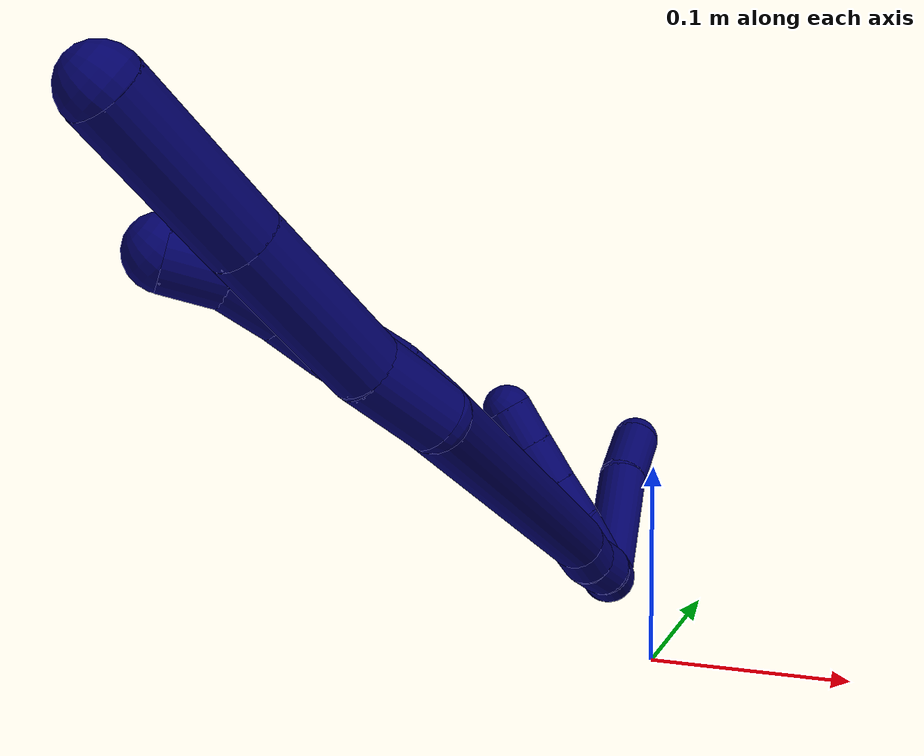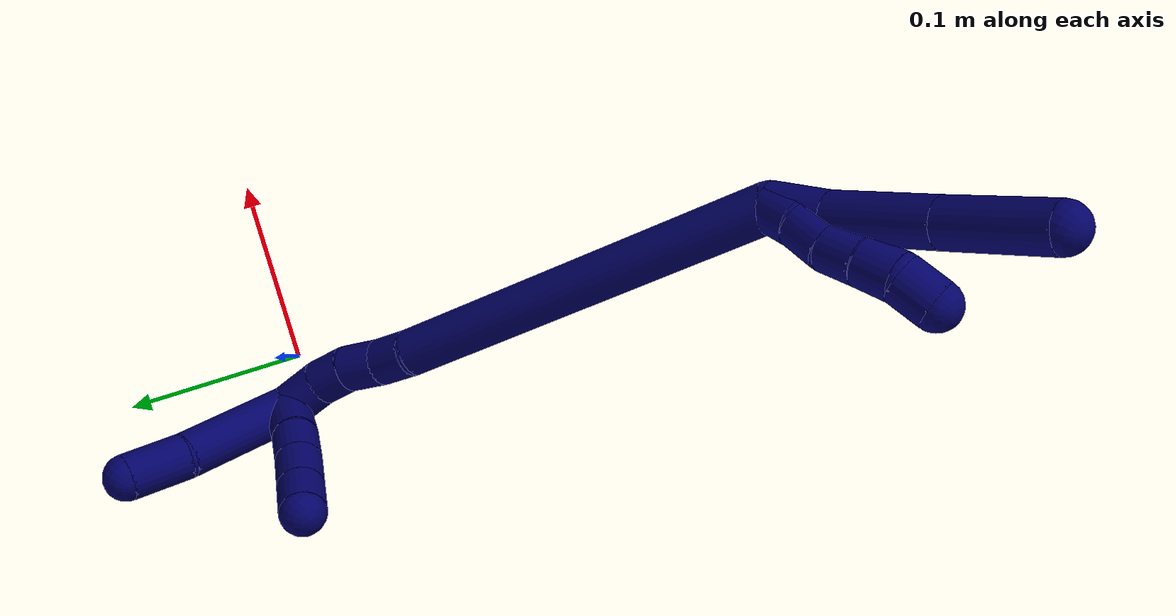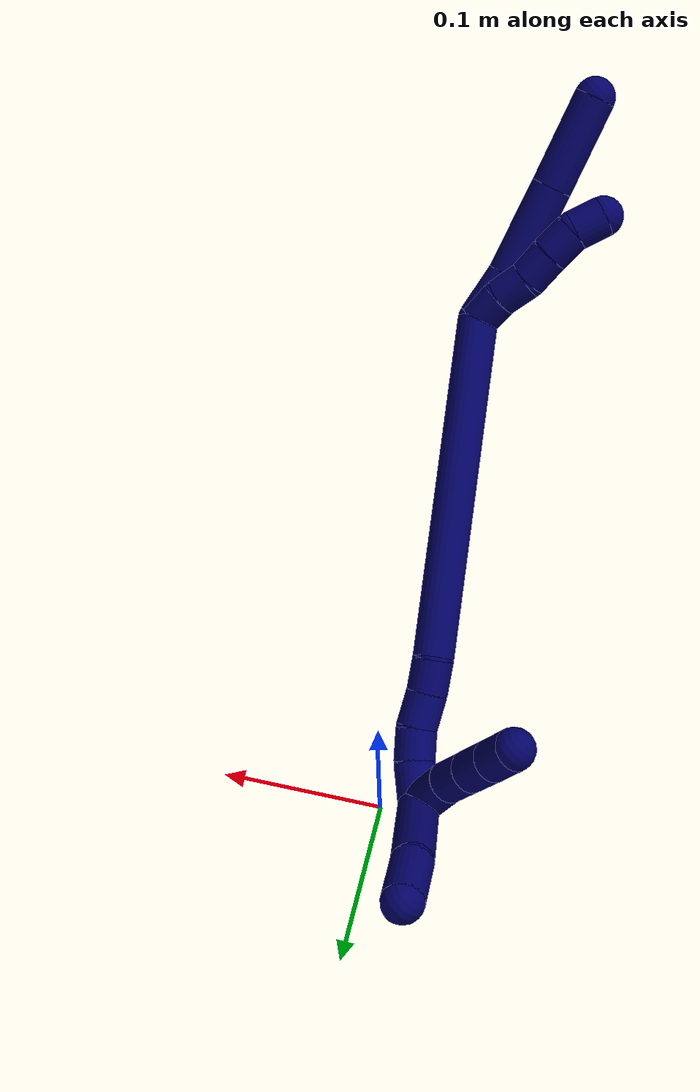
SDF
<sdf version="1.7">
 <world name="default">
  <model name="7">
   <static>0</static>
   <link name="7">
    <collision name="collision-cylinder-e_1_2_8">
     <pose>-0.000888 -0.004769 0.015474 0.298969 -0.054794 -0.008254</pose>
     <geometry><cylinder><radius>0.0125</radius><length>0.032434</length></cylinder></geometry>
     <surface>
      <friction><ode><mu>1.16</mu><mu2>1.16</mu2><slip1>0</slip1><slip2>0</slip2></ode></friction>
      <contact><ode><kp>1e+06</kp><kd>1</kd><max_vel>0</max_vel><min_depth>0.001</min_depth></ode></contact>
     </surface>
    </collision>
    <visual name="visual-cylinder-e_1_2_8">
     <pose>-0.000888 -0.004769 0.015474 0.298969 -0.054794 -0.008254</pose>
     <geometry><cylinder><radius>0.0125</radius><length>0.032434</length></cylinder></geometry>
     <material><ambient>0.003922 0 0.403922 1</ambient></material>
    </visual>
    <collision name="collision-cylinder-e_2_8_9">
     <pose>0.001354 -0.019013 0.058865 0.327188 0.105775 0.017476</pose>
     <geometry><cylinder><radius>0.0125</radius><length>0.059291</length></cylinder></geometry>
     <surface>
      <friction><ode><mu>1.16</mu><mu2>1.16</mu2><slip1>0</slip1><slip2>0</slip2></ode></friction>
      <contact><ode><kp>1e+06</kp><kd>1</kd><max_vel>0</max_vel><min_depth>0.001</min_depth></ode></contact>
     </surface>
    </collision>
    <visual name="visual-cylinder-e_2_8_9">
     <pose>0.001354 -0.019013 0.058865 0.327188 0.105775 0.017476</pose>
     <geometry><cylinder><radius>0.0125</radius><length>0.059291</length></cylinder></geometry>
     <material><ambient>0.003922 0 0.403922 1</ambient></material>
    </visual>
    <collision name="collision-cylinder-e_3_9_6">
     <pose>0.008006 -0.037901 0.11413 0.33151 0.121176 0.020296</pose>
     <geometry><cylinder><radius>0.0125</radius><length>0.058275</length></cylinder></geometry>
     <surface>
      <friction><ode><mu>1.16</mu><mu2>1.16</mu2><slip1>0</slip1><slip2>0</slip2></ode></friction>
      <contact><ode><kp>1e+06</kp><kd>1</kd><max_vel>0</max_vel><min_depth>0.001</min_depth></ode></contact>
     </surface>
    </collision>
    <visual name="visual-cylinder-e_3_9_6">
     <pose>0.008006 -0.037901 0.11413 0.33151 0.121176 0.020296</pose>
     <geometry><cylinder><radius>0.0125</radius><length>0.058275</length></cylinder></geometry>
     <material><ambient>0.003922 0 0.403922 1</ambient></material>
    </visual>
    <collision name="collision-cylinder-e_1_2_10">
     <pose>0.000149 0.000256 0.009996 -0.025616 0.014861 -0.00019</pose>
     <geometry><cylinder><radius>0.0125</radius><length>0.02</length></cylinder></geometry>
     <surface>
      <friction><ode><mu>1.16</mu><mu2>1.16</mu2><slip1>0</slip1><slip2>0</slip2></ode></friction>
      <contact><ode><kp>1e+06</kp><kd>1</kd><max_vel>0</max_vel><min_depth>0.001</min_depth></ode></contact>
     </surface>
    </collision>
    <visual name="visual-cylinder-e_1_2_10">
     <pose>0.000149 0.000256 0.009996 -0.025616 0.014861 -0.00019</pose>
     <geometry><cylinder><radius>0.0125</radius><length>0.02</length></cylinder></geometry>
     <material><ambient>0.003922 0 0.403922 1</ambient></material>
    </visual>
    <collision name="collision-cylinder-e_2_10_11">
     <pose>-0.001275 0.001821 0.02978 -0.132911 -0.157923 0.010532</pose>
     <geometry><cylinder><radius>0.0125</radius><length>0.02</length></cylinder></geometry>
     <surface>
      <friction><ode><mu>1.16</mu><mu2>1.16</mu2><slip1>0</slip1><slip2>0</slip2></ode></friction>
      <contact><ode><kp>1e+06</kp><kd>1</kd><max_vel>0</max_vel><min_depth>0.001</min_depth></ode></contact>
     </surface>
    </collision>
    <visual name="visual-cylinder-e_2_10_11">
     <pose>-0.001275 0.001821 0.02978 -0.132911 -0.157923 0.010532</pose>
     <geometry><cylinder><radius>0.0125</radius><length>0.02</length></cylinder></geometry>
     <material><ambient>0.003922 0 0.403922 1</ambient></material>
    </visual>
    <collision name="collision-cylinder-e_3_11_12">
     <pose>-0.00343 0.002176 0.049506 0.095716 -0.058198 -0.002788</pose>
     <geometry><cylinder><radius>0.0125</radius><length>0.02</length></cylinder></geometry>
     <surface>
      <friction><ode><mu>1.16</mu><mu2>1.16</mu2><slip1>0</slip1><slip2>0</slip2></ode></friction>
      <contact><ode><kp>1e+06</kp><kd>1</kd><max_vel>0</max_vel><min_depth>0.001</min_depth></ode></contact>
     </surface>
    </collision>
    <visual name="visual-cylinder-e_3_11_12">
     <pose>-0.00343 0.002176 0.049506 0.095716 -0.058198 -0.002788</pose>
     <geometry><cylinder><radius>0.0125</radius><length>0.02</length></cylinder></geometry>
     <material><ambient>0.003922 0 0.403922 1</ambient></material>
    </visual>
    <collision name="collision-cylinder-e_4_12_13">
     <pose>-0.005311 0.000332 0.069318 0.089812 -0.130366 -0.005866</pose>
     <geometry><cylinder><radius>0.0125</radius><length>0.02</length></cylinder></geometry>
     <surface>
      <friction><ode><mu>1.16</mu><mu2>1.16</mu2><slip1>0</slip1><slip2>0</slip2></ode></friction>
      <contact><ode><kp>1e+06</kp><kd>1</kd><max_vel>0</max_vel><min_depth>0.001</min_depth></ode></contact>
     </surface>
    </collision>
    <visual name="visual-cylinder-e_4_12_13">
     <pose>-0.005311 0.000332 0.069318 0.089812 -0.130366 -0.005866</pose>
     <geometry><cylinder><radius>0.0125</radius><length>0.02</length></cylinder></geometry>
     <material><ambient>0.003922 0 0.403922 1</ambient></material>
    </visual>
    <collision name="collision-cylinder-e_5_13_5">
     <pose>-0.010959 -3.9e-05 0.088184 -0.057613 -0.449734 0.013182</pose>
     <geometry><cylinder><radius>0.0125</radius><length>0.02</length></cylinder></geometry>
     <surface>
      <friction><ode><mu>1.16</mu><mu2>1.16</mu2><slip1>0</slip1><slip2>0</slip2></ode></friction>
      <contact><ode><kp>1e+06</kp><kd>1</kd><max_vel>0</max_vel><min_depth>0.001</min_depth></ode></contact>
     </surface>
    </collision>
    <visual name="visual-cylinder-e_5_13_5">
     <pose>-0.010959 -3.9e-05 0.088184 -0.057613 -0.449734 0.013182</pose>
     <geometry><cylinder><radius>0.0125</radius><length>0.02</length></cylinder></geometry>
     <material><ambient>0.003922 0 0.403922 1</ambient></material>
    </visual>
    <collision name="collision-cylinder-e_1_2_14">
     <pose>-0.005151 0.078478 -0.070619 -2.30353 -0.048755 0.109373</pose>
     <geometry><cylinder><radius>0.0125</radius><length>0.2114</length></cylinder></geometry>
     <surface>
      <friction><ode><mu>1.16</mu><mu2>1.16</mu2><slip1>0</slip1><slip2>0</slip2></ode></friction>
      <contact><ode><kp>1e+06</kp><kd>1</kd><max_vel>0</max_vel><min_depth>0.001</min_depth></ode></contact>
     </surface>
    </collision>
    <visual name="visual-cylinder-e_1_2_14">
     <pose>-0.005151 0.078478 -0.070619 -2.30353 -0.048755 0.109373</pose>
     <geometry><cylinder><radius>0.0125</radius><length>0.2114</length></cylinder></geometry>
     <material><ambient>0.003922 0 0.403922 1</ambient></material>
    </visual>
    <collision name="collision-cylinder-e_2_14_15">
     <pose>-0.01195 0.163597 -0.149507 -2.46497 -0.154145 0.432132</pose>
     <geometry><cylinder><radius>0.0125</radius><length>0.021464</length></cylinder></geometry>
     <surface>
      <friction><ode><mu>1.16</mu><mu2>1.16</mu2><slip1>0</slip1><slip2>0</slip2></ode></friction>
      <contact><ode><kp>1e+06</kp><kd>1</kd><max_vel>0</max_vel><min_depth>0.001</min_depth></ode></contact>
     </surface>
    </collision>
    <visual name="visual-cylinder-e_2_14_15">
     <pose>-0.01195 0.163597 -0.149507 -2.46497 -0.154145 0.432132</pose>
     <geometry><cylinder><radius>0.0125</radius><length>0.021464</length></cylinder></geometry>
     <material><ambient>0.003922 0 0.403922 1</ambient></material>
    </visual>
    <collision name="collision-cylinder-e_3_15_16">
     <pose>-0.013482 0.177186 -0.166321 -2.45892 0.01057 -0.029752</pose>
     <geometry><cylinder><radius>0.0125</radius><length>0.022029</length></cylinder></geometry>
     <surface>
      <friction><ode><mu>1.16</mu><mu2>1.16</mu2><slip1>0</slip1><slip2>0</slip2></ode></friction>
      <contact><ode><kp>1e+06</kp><kd>1</kd><max_vel>0</max_vel><min_depth>0.001</min_depth></ode></contact>
     </surface>
    </collision>
    <visual name="visual-cylinder-e_3_15_16">
     <pose>-0.013482 0.177186 -0.166321 -2.45892 0.01057 -0.029752</pose>
     <geometry><cylinder><radius>0.0125</radius><length>0.022029</length></cylinder></geometry>
     <material><ambient>0.003922 0 0.403922 1</ambient></material>
    </visual>
    <collision name="collision-cylinder-e_4_16_17">
     <pose>-0.014435 0.191839 -0.181218 -2.26016 -0.106761 0.225608</pose>
     <geometry><cylinder><radius>0.0125</radius><length>0.020084</length></cylinder></geometry>
     <surface>
      <friction><ode><mu>1.16</mu><mu2>1.16</mu2><slip1>0</slip1><slip2>0</slip2></ode></friction>
      <contact><ode><kp>1e+06</kp><kd>1</kd><max_vel>0</max_vel><min_depth>0.001</min_depth></ode></contact>
     </surface>
    </collision>
    <visual name="visual-cylinder-e_4_16_17">
     <pose>-0.014435 0.191839 -0.181218 -2.26016 -0.106761 0.225608</pose>
     <geometry><cylinder><radius>0.0125</radius><length>0.020084</length></cylinder></geometry>
     <material><ambient>0.003922 0 0.403922 1</ambient></material>
    </visual>
    <collision name="collision-cylinder-e_5_17_1">
     <pose>-0.016637 0.210745 -0.193025 -2.0241 -0.090582 0.144731</pose>
     <geometry><cylinder><radius>0.0125</radius><length>0.025023</length></cylinder></geometry>
     <surface>
      <friction><ode><mu>1.16</mu><mu2>1.16</mu2><slip1>0</slip1><slip2>0</slip2></ode></friction>
      <contact><ode><kp>1e+06</kp><kd>1</kd><max_vel>0</max_vel><min_depth>0.001</min_depth></ode></contact>
     </surface>
    </collision>
    <visual name="visual-cylinder-e_5_17_1">
     <pose>-0.016637 0.210745 -0.193025 -2.0241 -0.090582 0.144731</pose>
     <geometry><cylinder><radius>0.0125</radius><length>0.025023</length></cylinder></geometry>
     <material><ambient>0.003922 0 0.403922 1</ambient></material>
    </visual>
    <collision name="collision-cylinder-e_1_1_18">
     <pose>-0.012371 0.225956 -0.183168 -0.256012 0.328638 -0.042677</pose>
     <geometry><cylinder><radius>0.0125</radius><length>0.03345</length></cylinder></geometry>
     <surface>
      <friction><ode><mu>1.16</mu><mu2>1.16</mu2><slip1>0</slip1><slip2>0</slip2></ode></friction>
      <contact><ode><kp>1e+06</kp><kd>1</kd><max_vel>0</max_vel><min_depth>0.001</min_depth></ode></contact>
     </surface>
    </collision>
    <visual name="visual-cylinder-e_1_1_18">
     <pose>-0.012371 0.225956 -0.183168 -0.256012 0.328638 -0.042677</pose>
     <geometry><cylinder><radius>0.0125</radius><length>0.03345</length></cylinder></geometry>
     <material><ambient>0.003922 0 0.403922 1</ambient></material>
    </visual>
    <collision name="collision-cylinder-e_2_18_19">
     <pose>-0.004058 0.233771 -0.158145 -0.373679 0.272557 -0.051835</pose>
     <geometry><cylinder><radius>0.0125</radius><length>0.021656</length></cylinder></geometry>
     <surface>
      <friction><ode><mu>1.16</mu><mu2>1.16</mu2><slip1>0</slip1><slip2>0</slip2></ode></friction>
      <contact><ode><kp>1e+06</kp><kd>1</kd><max_vel>0</max_vel><min_depth>0.001</min_depth></ode></contact>
     </surface>
    </collision>
    <visual name="visual-cylinder-e_2_18_19">
     <pose>-0.004058 0.233771 -0.158145 -0.373679 0.272557 -0.051835</pose>
     <geometry><cylinder><radius>0.0125</radius><length>0.021656</length></cylinder></geometry>
     <material><ambient>0.003922 0 0.403922 1</ambient></material>
    </visual>
    <collision name="collision-cylinder-e_3_19_20">
     <pose>0.002351 0.241751 -0.138295 -0.390359 0.308471 -0.061452</pose>
     <geometry><cylinder><radius>0.0125</radius><length>0.023019</length></cylinder></geometry>
     <surface>
      <friction><ode><mu>1.16</mu><mu2>1.16</mu2><slip1>0</slip1><slip2>0</slip2></ode></friction>
      <contact><ode><kp>1e+06</kp><kd>1</kd><max_vel>0</max_vel><min_depth>0.001</min_depth></ode></contact>
     </surface>
    </collision>
    <visual name="visual-cylinder-e_3_19_20">
     <pose>0.002351 0.241751 -0.138295 -0.390359 0.308471 -0.061452</pose>
     <geometry><cylinder><radius>0.0125</radius><length>0.023019</length></cylinder></geometry>
     <material><ambient>0.003922 0 0.403922 1</ambient></material>
    </visual>
    <collision name="collision-cylinder-e_4_20_4">
     <pose>0.009261 0.249791 -0.118511 -0.381443 0.317569 -0.061813</pose>
     <geometry><cylinder><radius>0.0125</radius><length>0.021875</length></cylinder></geometry>
     <surface>
      <friction><ode><mu>1.16</mu><mu2>1.16</mu2><slip1>0</slip1><slip2>0</slip2></ode></friction>
      <contact><ode><kp>1e+06</kp><kd>1</kd><max_vel>0</max_vel><min_depth>0.001</min_depth></ode></contact>
     </surface>
    </collision>
    <visual name="visual-cylinder-e_4_20_4">
     <pose>0.009261 0.249791 -0.118511 -0.381443 0.317569 -0.061813</pose>
     <geometry><cylinder><radius>0.0125</radius><length>0.021875</length></cylinder></geometry>
     <material><ambient>0.003922 0 0.403922 1</ambient></material>
    </visual>
    <collision name="collision-cylinder-e_1_1_21">
     <pose>0.003832 0.247209 -0.194756 -1.42437 0.702129 -0.612475</pose>
     <geometry><cylinder><radius>0.0125</radius><length>0.066892</length></cylinder></geometry>
     <surface>
      <friction><ode><mu>1.16</mu><mu2>1.16</mu2><slip1>0</slip1><slip2>0</slip2></ode></friction>
      <contact><ode><kp>1e+06</kp><kd>1</kd><max_vel>0</max_vel><min_depth>0.001</min_depth></ode></contact>
     </surface>
    </collision>
    <visual name="visual-cylinder-e_1_1_21">
     <pose>0.003832 0.247209 -0.194756 -1.42437 0.702129 -0.612475</pose>
     <geometry><cylinder><radius>0.0125</radius><length>0.066892</length></cylinder></geometry>
     <material><ambient>0.003922 0 0.403922 1</ambient></material>
    </visual>
    <collision name="collision-cylinder-e_2_21_3">
     <pose>0.035649 0.285437 -0.192268 -1.66593 0.665086 -0.726106</pose>
     <geometry><cylinder><radius>0.0125</radius><length>0.033108</length></cylinder></geometry>
     <surface>
      <friction><ode><mu>1.16</mu><mu2>1.16</mu2><slip1>0</slip1><slip2>0</slip2></ode></friction>
      <contact><ode><kp>1e+06</kp><kd>1</kd><max_vel>0</max_vel><min_depth>0.001</min_depth></ode></contact>
     </surface>
    </collision>
    <visual name="visual-cylinder-e_2_21_3">
     <pose>0.035649 0.285437 -0.192268 -1.66593 0.665086 -0.726106</pose>
     <geometry><cylinder><radius>0.0125</radius><length>0.033108</length></cylinder></geometry>
     <material><ambient>0.003922 0 0.403922 1</ambient></material>
    </visual>
    <collision name="collision-sphere-3">
     <pose>0.045865 0.298404 -0.193505 0 -0 0</pose>
     <geometry><sphere><radius>0.0125</radius></sphere></geometry>
     <surface>
      <friction><ode><mu>1.16</mu><mu2>1.16</mu2><slip1>0</slip1><slip2>0</slip2></ode></friction>
      <contact><ode><kp>1e+06</kp><kd>1</kd><max_vel>0</max_vel><min_depth>0.001</min_depth></ode></contact>
     </surface>
    </collision>
    <visual name="visual-sphere-3">
     <pose>0.045865 0.298404 -0.193505 0 -0 0</pose>
     <geometry><sphere><radius>0.0125</radius></sphere></geometry>
     <material><ambient>0.003922 0 0.403922 1</ambient></material>
    </visual>
    <collision name="collision-sphere-21">
     <pose>0.025433 0.272471 -0.191031 0 -0 0</pose>
     <geometry><sphere><radius>0.0125</radius></sphere></geometry>
     <surface>
      <friction><ode><mu>1.16</mu><mu2>1.16</mu2><slip1>0</slip1><slip2>0</slip2></ode></friction>
      <contact><ode><kp>1e+06</kp><kd>1</kd><max_vel>0</max_vel><min_depth>0.001</min_depth></ode></contact>
     </surface>
    </collision>
    <visual name="visual-sphere-21">
     <pose>0.025433 0.272471 -0.191031 0 -0 0</pose>
     <geometry><sphere><radius>0.0125</radius></sphere></geometry>
     <material><ambient>0.003922 0 0.403922 1</ambient></material>
    </visual>
    <collision name="collision-sphere-4">
     <pose>0.012676 0.253659 -0.108867 0 -0 0</pose>
     <geometry><sphere><radius>0.0125</radius></sphere></geometry>
     <surface>
      <friction><ode><mu>1.16</mu><mu2>1.16</mu2><slip1>0</slip1><slip2>0</slip2></ode></friction>
      <contact><ode><kp>1e+06</kp><kd>1</kd><max_vel>0</max_vel><min_depth>0.001</min_depth></ode></contact>
     </surface>
    </collision>
    <visual name="visual-sphere-4">
     <pose>0.012676 0.253659 -0.108867 0 -0 0</pose>
     <geometry><sphere><radius>0.0125</radius></sphere></geometry>
     <material><ambient>0.003922 0 0.403922 1</ambient></material>
    </visual>
    <collision name="collision-sphere-20">
     <pose>0.005845 0.245923 -0.128154 0 -0 0</pose>
     <geometry><sphere><radius>0.0125</radius></sphere></geometry>
     <surface>
      <friction><ode><mu>1.16</mu><mu2>1.16</mu2><slip1>0</slip1><slip2>0</slip2></ode></friction>
      <contact><ode><kp>1e+06</kp><kd>1</kd><max_vel>0</max_vel><min_depth>0.001</min_depth></ode></contact>
     </surface>
    </collision>
    <visual name="visual-sphere-20">
     <pose>0.005845 0.245923 -0.128154 0 -0 0</pose>
     <geometry><sphere><radius>0.0125</radius></sphere></geometry>
     <material><ambient>0.003922 0 0.403922 1</ambient></material>
    </visual>
    <collision name="collision-sphere-11">
     <pose>-0.002848 0.00313 0.039568 0 -0 0</pose>
     <geometry><sphere><radius>0.0125</radius></sphere></geometry>
     <surface>
      <friction><ode><mu>1.16</mu><mu2>1.16</mu2><slip1>0</slip1><slip2>0</slip2></ode></friction>
      <contact><ode><kp>1e+06</kp><kd>1</kd><max_vel>0</max_vel><min_depth>0.001</min_depth></ode></contact>
     </surface>
    </collision>
    <visual name="visual-sphere-11">
     <pose>-0.002848 0.00313 0.039568 0 -0 0</pose>
     <geometry><sphere><radius>0.0125</radius></sphere></geometry>
     <material><ambient>0.003922 0 0.403922 1</ambient></material>
    </visual>
    <collision name="collision-sphere-10">
     <pose>0.000297 0.000512 0.019991 0 -0 0</pose>
     <geometry><sphere><radius>0.0125</radius></sphere></geometry>
     <surface>
      <friction><ode><mu>1.16</mu><mu2>1.16</mu2><slip1>0</slip1><slip2>0</slip2></ode></friction>
      <contact><ode><kp>1e+06</kp><kd>1</kd><max_vel>0</max_vel><min_depth>0.001</min_depth></ode></contact>
     </surface>
    </collision>
    <visual name="visual-sphere-10">
     <pose>0.000297 0.000512 0.019991 0 -0 0</pose>
     <geometry><sphere><radius>0.0125</radius></sphere></geometry>
     <material><ambient>0.003922 0 0.403922 1</ambient></material>
    </visual>
    <collision name="collision-sphere-6">
     <pose>0.011528 -0.047315 0.141479 0 -0 0</pose>
     <geometry><sphere><radius>0.0125</radius></sphere></geometry>
     <surface>
      <friction><ode><mu>1.16</mu><mu2>1.16</mu2><slip1>0</slip1><slip2>0</slip2></ode></friction>
      <contact><ode><kp>1e+06</kp><kd>1</kd><max_vel>0</max_vel><min_depth>0.001</min_depth></ode></contact>
     </surface>
    </collision>
    <visual name="visual-sphere-6">
     <pose>0.011528 -0.047315 0.141479 0 -0 0</pose>
     <geometry><sphere><radius>0.0125</radius></sphere></geometry>
     <material><ambient>0.003922 0 0.403922 1</ambient></material>
    </visual>
    <collision name="collision-sphere-9">
     <pose>0.004484 -0.028487 0.086781 0 -0 0</pose>
     <geometry><sphere><radius>0.0125</radius></sphere></geometry>
     <surface>
      <friction><ode><mu>1.16</mu><mu2>1.16</mu2><slip1>0</slip1><slip2>0</slip2></ode></friction>
      <contact><ode><kp>1e+06</kp><kd>1</kd><max_vel>0</max_vel><min_depth>0.001</min_depth></ode></contact>
     </surface>
    </collision>
    <visual name="visual-sphere-9">
     <pose>0.004484 -0.028487 0.086781 0 -0 0</pose>
     <geometry><sphere><radius>0.0125</radius></sphere></geometry>
     <material><ambient>0.003922 0 0.403922 1</ambient></material>
    </visual>
    <collision name="collision-sphere-2">
     <geometry><sphere><radius>0.0125</radius></sphere></geometry>
     <surface>
      <friction><ode><mu>1.16</mu><mu2>1.16</mu2><slip1>0</slip1><slip2>0</slip2></ode></friction>
      <contact><ode><kp>1e+06</kp><kd>1</kd><max_vel>0</max_vel><min_depth>0.001</min_depth></ode></contact>
     </surface>
    </collision>
    <visual name="visual-sphere-2">
     <geometry><sphere><radius>0.0125</radius></sphere></geometry>
     <material><ambient>0.003922 0 0.403922 1</ambient></material>
    </visual>
    <collision name="collision-sphere-19">
     <pose>-0.001143 0.237578 -0.148437 0 -0 0</pose>
     <geometry><sphere><radius>0.0125</radius></sphere></geometry>
     <surface>
      <friction><ode><mu>1.16</mu><mu2>1.16</mu2><slip1>0</slip1><slip2>0</slip2></ode></friction>
      <contact><ode><kp>1e+06</kp><kd>1</kd><max_vel>0</max_vel><min_depth>0.001</min_depth></ode></contact>
     </surface>
    </collision>
    <visual name="visual-sphere-19">
     <pose>-0.001143 0.237578 -0.148437 0 -0 0</pose>
     <geometry><sphere><radius>0.0125</radius></sphere></geometry>
     <material><ambient>0.003922 0 0.403922 1</ambient></material>
    </visual>
    <collision name="collision-sphere-8">
     <pose>-0.001776 -0.009539 0.030948 0 -0 0</pose>
     <geometry><sphere><radius>0.0125</radius></sphere></geometry>
     <surface>
      <friction><ode><mu>1.16</mu><mu2>1.16</mu2><slip1>0</slip1><slip2>0</slip2></ode></friction>
      <contact><ode><kp>1e+06</kp><kd>1</kd><max_vel>0</max_vel><min_depth>0.001</min_depth></ode></contact>
     </surface>
    </collision>
    <visual name="visual-sphere-8">
     <pose>-0.001776 -0.009539 0.030948 0 -0 0</pose>
     <geometry><sphere><radius>0.0125</radius></sphere></geometry>
     <material><ambient>0.003922 0 0.403922 1</ambient></material>
    </visual>
    <collision name="collision-sphere-12">
     <pose>-0.004011 0.001221 0.059443 0 -0 0</pose>
     <geometry><sphere><radius>0.0125</radius></sphere></geometry>
     <surface>
      <friction><ode><mu>1.16</mu><mu2>1.16</mu2><slip1>0</slip1><slip2>0</slip2></ode></friction>
      <contact><ode><kp>1e+06</kp><kd>1</kd><max_vel>0</max_vel><min_depth>0.001</min_depth></ode></contact>
     </surface>
    </collision>
    <visual name="visual-sphere-12">
     <pose>-0.004011 0.001221 0.059443 0 -0 0</pose>
     <geometry><sphere><radius>0.0125</radius></sphere></geometry>
     <material><ambient>0.003922 0 0.403922 1</ambient></material>
    </visual>
    <collision name="collision-sphere-13">
     <pose>-0.006611 -0.000557 0.079193 0 -0 0</pose>
     <geometry><sphere><radius>0.0125</radius></sphere></geometry>
     <surface>
      <friction><ode><mu>1.16</mu><mu2>1.16</mu2><slip1>0</slip1><slip2>0</slip2></ode></friction>
      <contact><ode><kp>1e+06</kp><kd>1</kd><max_vel>0</max_vel><min_depth>0.001</min_depth></ode></contact>
     </surface>
    </collision>
    <visual name="visual-sphere-13">
     <pose>-0.006611 -0.000557 0.079193 0 -0 0</pose>
     <geometry><sphere><radius>0.0125</radius></sphere></geometry>
     <material><ambient>0.003922 0 0.403922 1</ambient></material>
    </visual>
    <collision name="collision-sphere-5">
     <pose>-0.015306 0.00048 0.097175 0 -0 0</pose>
     <geometry><sphere><radius>0.0125</radius></sphere></geometry>
     <surface>
      <friction><ode><mu>1.16</mu><mu2>1.16</mu2><slip1>0</slip1><slip2>0</slip2></ode></friction>
      <contact><ode><kp>1e+06</kp><kd>1</kd><max_vel>0</max_vel><min_depth>0.001</min_depth></ode></contact>
     </surface>
    </collision>
    <visual name="visual-sphere-5">
     <pose>-0.015306 0.00048 0.097175 0 -0 0</pose>
     <geometry><sphere><radius>0.0125</radius></sphere></geometry>
     <material><ambient>0.003922 0 0.403922 1</ambient></material>
    </visual>
    <collision name="collision-sphere-14">
     <pose>-0.010303 0.156956 -0.141239 0 -0 0</pose>
     <geometry><sphere><radius>0.0125</radius></sphere></geometry>
     <surface>
      <friction><ode><mu>1.16</mu><mu2>1.16</mu2><slip1>0</slip1><slip2>0</slip2></ode></friction>
      <contact><ode><kp>1e+06</kp><kd>1</kd><max_vel>0</max_vel><min_depth>0.001</min_depth></ode></contact>
     </surface>
    </collision>
    <visual name="visual-sphere-14">
     <pose>-0.010303 0.156956 -0.141239 0 -0 0</pose>
     <geometry><sphere><radius>0.0125</radius></sphere></geometry>
     <material><ambient>0.003922 0 0.403922 1</ambient></material>
    </visual>
    <collision name="collision-sphere-15">
     <pose>-0.013598 0.170237 -0.157776 0 -0 0</pose>
     <geometry><sphere><radius>0.0125</radius></sphere></geometry>
     <surface>
      <friction><ode><mu>1.16</mu><mu2>1.16</mu2><slip1>0</slip1><slip2>0</slip2></ode></friction>
      <contact><ode><kp>1e+06</kp><kd>1</kd><max_vel>0</max_vel><min_depth>0.001</min_depth></ode></contact>
     </surface>
    </collision>
    <visual name="visual-sphere-15">
     <pose>-0.013598 0.170237 -0.157776 0 -0 0</pose>
     <geometry><sphere><radius>0.0125</radius></sphere></geometry>
     <material><ambient>0.003922 0 0.403922 1</ambient></material>
    </visual>
    <collision name="collision-sphere-16">
     <pose>-0.013365 0.184134 -0.174867 0 -0 0</pose>
     <geometry><sphere><radius>0.0125</radius></sphere></geometry>
     <surface>
      <friction><ode><mu>1.16</mu><mu2>1.16</mu2><slip1>0</slip1><slip2>0</slip2></ode></friction>
      <contact><ode><kp>1e+06</kp><kd>1</kd><max_vel>0</max_vel><min_depth>0.001</min_depth></ode></contact>
     </surface>
    </collision>
    <visual name="visual-sphere-16">
     <pose>-0.013365 0.184134 -0.174867 0 -0 0</pose>
     <geometry><sphere><radius>0.0125</radius></sphere></geometry>
     <material><ambient>0.003922 0 0.403922 1</ambient></material>
    </visual>
    <collision name="collision-sphere-17">
     <pose>-0.015506 0.199544 -0.187569 0 -0 0</pose>
     <geometry><sphere><radius>0.0125</radius></sphere></geometry>
     <surface>
      <friction><ode><mu>1.16</mu><mu2>1.16</mu2><slip1>0</slip1><slip2>0</slip2></ode></friction>
      <contact><ode><kp>1e+06</kp><kd>1</kd><max_vel>0</max_vel><min_depth>0.001</min_depth></ode></contact>
     </surface>
    </collision>
    <visual name="visual-sphere-17">
     <pose>-0.015506 0.199544 -0.187569 0 -0 0</pose>
     <geometry><sphere><radius>0.0125</radius></sphere></geometry>
     <material><ambient>0.003922 0 0.403922 1</ambient></material>
    </visual>
    <collision name="collision-sphere-1">
     <pose>-0.017769 0.221947 -0.198482 0 -0 0</pose>
     <geometry><sphere><radius>0.0125</radius></sphere></geometry>
     <surface>
      <friction><ode><mu>1.16</mu><mu2>1.16</mu2><slip1>0</slip1><slip2>0</slip2></ode></friction>
      <contact><ode><kp>1e+06</kp><kd>1</kd><max_vel>0</max_vel><min_depth>0.001</min_depth></ode></contact>
     </surface>
    </collision>
    <visual name="visual-sphere-1">
     <pose>-0.017769 0.221947 -0.198482 0 -0 0</pose>
     <geometry><sphere><radius>0.0125</radius></sphere></geometry>
     <material><ambient>0.003922 0 0.403922 1</ambient></material>
    </visual>
    <collision name="collision-sphere-18">
     <pose>-0.006973 0.229964 -0.167854 0 -0 0</pose>
     <geometry><sphere><radius>0.0125</radius></sphere></geometry>
     <surface>
      <friction><ode><mu>1.16</mu><mu2>1.16</mu2><slip1>0</slip1><slip2>0</slip2></ode></friction>
      <contact><ode><kp>1e+06</kp><kd>1</kd><max_vel>0</max_vel><min_depth>0.001</min_depth></ode></contact>
     </surface>
    </collision>
    <visual name="visual-sphere-18">
     <pose>-0.006973 0.229964 -0.167854 0 -0 0</pose>
     <geometry><sphere><radius>0.0125</radius></sphere></geometry>
     <material><ambient>0.003922 0 0.403922 1</ambient></material>
    </visual>
    <inertial>
     <pose>-0.001408 0.105824 -0.065885 0 -0 0</pose>
     <mass>0.75</mass>
     <inertia>
      <ixx>0.000955</ixx>
      <ixy>0</ixy>
      <ixz>0</ixz>
      <iyy>-0.000362</iyy>
      <iyz>0</iyz>
      <izz>-0.000586</izz>
     </inertia>
    </inertial>
   </link>
   <pose>-0.00355 -0.254517 0.173665 0.083023 -0.817492 0.54961</pose>
  </model>
 </world>
</sdf>
